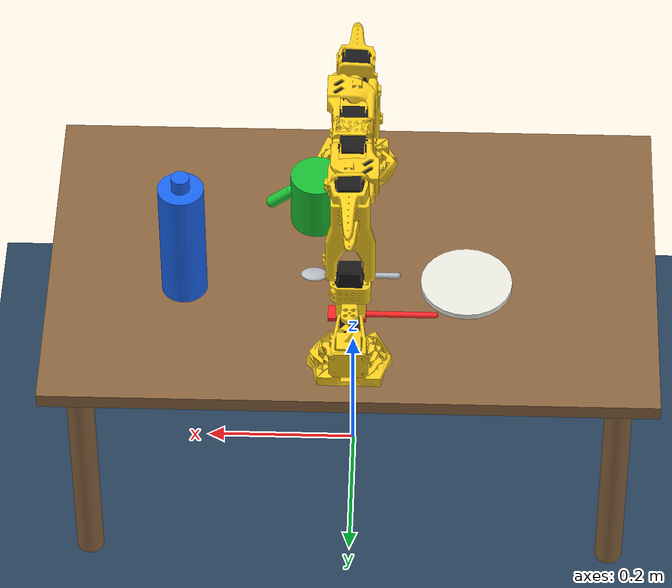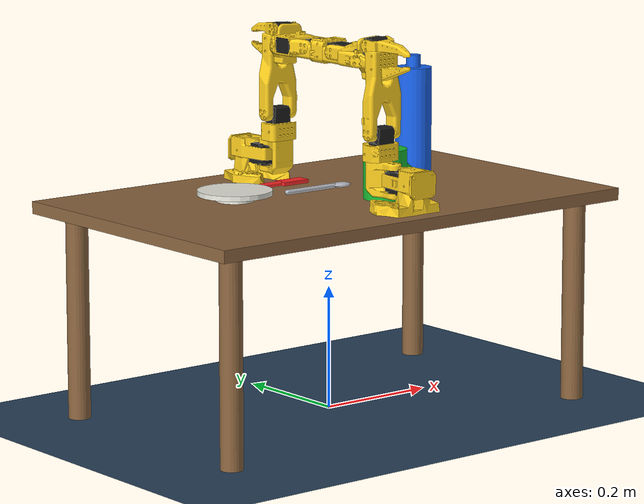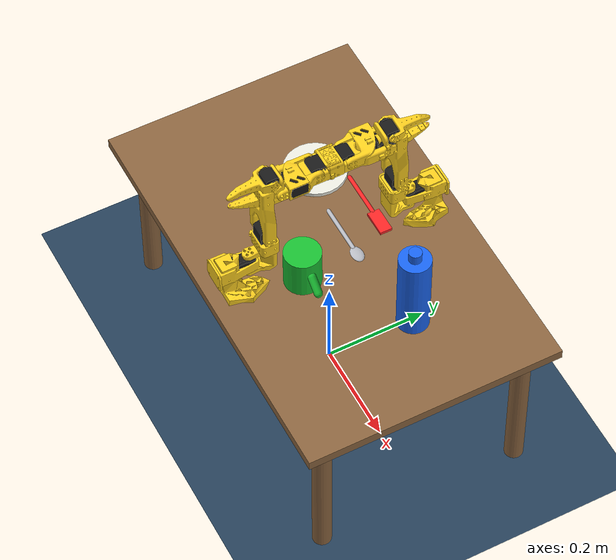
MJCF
<?xml version="1.0"?>
<mujoco model="so101_dual_table">
  <compiler angle="radian" meshdir="../../../../scenes/so101/assets" autolimits="true"/>

  <visual>
    <global offwidth="1280" offheight="720" azimuth="140" elevation="-25"/>
    <headlight diffuse="0.6 0.6 0.6" ambient="0.3 0.3 0.3" specular="0 0 0"/>
    <rgba haze="0.15 0.25 0.35 1"/>
  </visual>

  <default>
    <default class="so101_new_calib">
      <joint damping="1" frictionloss="0.1" armature="0.005"/>
      <position kp="50"/>
      <default class="visual">
        <geom type="mesh" contype="0" conaffinity="0" group="2"/>
      </default>
      <default class="collision">
        <geom group="3"/>
      </default>
    </default>
  </default>
  <default>
    <default class="sts3215">
      <geom contype="0" conaffinity="0"/>
      <joint damping="0.60" frictionloss="0.052" armature="0.028"/>
      <position kp="998.22" kv="2.731" forcerange="-2.94 2.94"/>
    </default>
    <default class="backlash">
      <joint damping="0.01" frictionloss="0" armature="0.01" limited="true" range="-0.008726646259971648 0.008726646259971648"/>
    </default>
  </default>

  <asset>
    <texture type="skybox" builtin="gradient" rgb1="0.3 0.5 0.7" rgb2="0 0 0" width="512" height="3072"/>
    <texture type="2d" name="groundplane" builtin="checker" mark="edge" rgb1="0.2 0.3 0.4" rgb2="0.1 0.2 0.3" markrgb="0.8 0.8 0.8" width="300" height="300"/>
    <material name="groundplane" texture="groundplane" texuniform="true" texrepeat="5 5" reflectance="0.2"/>

    <!-- Furniture / prop materials (ours, not upstream) -->
    <material name="table_material" rgba="0.55 0.40 0.25 1"/>
    <material name="drawer_material" rgba="0.42 0.28 0.18 1"/>
    <material name="drawer_box_material" rgba="0.85 0.10 0.10 1"/>
    <material name="plate_material" rgba="0.92 0.92 0.88 1"/>
    <material name="mug_material" rgba="0.10 0.75 0.20 1"/>
    <material name="mug_handle_material" rgba="0.10 0.75 0.20 1"/>
    <material name="fork_material" rgba="1.0 0.15 0.15 1.0"/>
    <material name="spoon_material" rgba="0.72 0.73 0.76 1"/>
    <material name="bottle_material" rgba="0.10 0.40 0.95 1"/>

    <mesh file="waveshare_mounting_plate_so101_v2.stl" />
    <mesh file="sts3215_03a_v1.stl" />
    <mesh file="motor_holder_so101_base_v1.stl" />
    <mesh file="wrist_roll_follower_so101_v1.stl" />
    <mesh file="moving_jaw_so101_v1.stl" />
    <mesh file="base_motor_holder_so101_v1.stl" />
    <mesh file="upper_arm_so101_v1.stl" />
    <mesh file="wrist_roll_pitch_so101_v2.stl" />
    <mesh file="under_arm_so101_v1.stl" />
    <mesh file="rotation_pitch_so101_v1.stl" />
    <mesh file="motor_holder_so101_wrist_v1.stl" />
    <mesh file="sts3215_03a_no_horn_v1.stl" />
    <mesh file="base_so101_v2.stl" />
    <material name="base_motor_holder_so101_v1_material" rgba="1 0.82 0.12 1" />
    <material name="base_so101_v2_material" rgba="1 0.82 0.12 1" />
    <material name="sts3215_03a_v1_material" rgba="0.1 0.1 0.1 1" />
    <material name="waveshare_mounting_plate_so101_v2_material" rgba="1 0.82 0.12 1" />
    <material name="motor_holder_so101_base_v1_material" rgba="1 0.82 0.12 1" />
    <material name="rotation_pitch_so101_v1_material" rgba="1 0.82 0.12 1" />
    <material name="upper_arm_so101_v1_material" rgba="1 0.82 0.12 1" />
    <material name="under_arm_so101_v1_material" rgba="1 0.82 0.12 1" />
    <material name="motor_holder_so101_wrist_v1_material" rgba="1 0.82 0.12 1" />
    <material name="sts3215_03a_no_horn_v1_material" rgba="0.1 0.1 0.1 1.0" />
    <material name="wrist_roll_pitch_so101_v2_material" rgba="1 0.82 0.12 1" />
    <material name="wrist_roll_follower_so101_v1_material" rgba="1 0.82 0.12 1" />
    <material name="moving_jaw_so101_v1_material" rgba="1 0.82 0.12 1" />
  </asset>

  <worldbody>
    <light pos="0 0 3.5" dir="0 0 -1" directional="true"/>
    <light pos="0.6 -0.6 1.5" dir="-0.4 0.4 -1" directional="true"/>
    <geom name="floor" size="0 0 0.05" pos="0 0 0" type="plane" material="groundplane"/>

    <body name="table" pos="0 0 0">
      <geom name="table_top" type="box" size="0.40 0.25 0.01" pos="0 0 0.34" material="table_material"/>
      <geom name="table_leg_fl" type="cylinder" size="0.018 0.165" pos="-0.35 -0.20 0.165" material="table_material"/>
      <geom name="table_leg_fr" type="cylinder" size="0.018 0.165" pos="0.35 -0.20 0.165" material="table_material"/>
      <geom name="table_leg_bl" type="cylinder" size="0.018 0.165" pos="-0.35 0.20 0.165" material="table_material"/>
      <geom name="table_leg_br" type="cylinder" size="0.018 0.165" pos="0.35 0.20 0.165" material="table_material"/>
    </body>

    <!-- Manipulable props (free joints). All placed within the arms'
         overlapping reach band, y in [-0.05, 0.08], resting on the table
         surface (z=0.35). -->
    <body name="plate" pos="-0.1500 0.0500 0.3550">
      <freejoint name="plate_free"/>
      <geom name="plate_foot" type="cylinder" size="0.0300 0.0050" pos="0 0 0" mass="0.05" material="plate_material" friction="0.9 0.005 0.0001"/>
      <geom name="plate_dish" type="cylinder" size="0.0600 0.0040" pos="0 0 0.0090" mass="0.10" material="plate_material" friction="0.9 0.005 0.0001"/>
    </body>

    <body name="mug" pos="0.0500 -0.0800 0.3900">
      <freejoint name="mug_free"/>
      <geom name="mug_body" type="cylinder" size="0.035 0.04" mass="0.22" material="mug_material" friction="0.9 0.005 0.0001"/>
      <geom name="mug_handle" type="capsule" size="0.008" fromto="0.035 0 0.01 0.06 0 -0.01" mass="0.02" material="mug_handle_material" friction="0.9 0.005 0.0001"/>
    </body>

    <body name="fork" pos="-0.0500 0.1000 0.3560">
      <freejoint name="fork_free"/>
      <geom name="fork_handle" type="capsule" size="0.004" fromto="-0.06 0 0 0.03 0 0" mass="0.02" material="fork_material" friction="0.5 0.003 0.0001"/>
      <geom name="fork_head" type="box" size="0.025 0.012 0.003" pos="0.055 0 0" mass="0.01" material="fork_material" friction="0.5 0.003 0.0001"/>
    </body>

    <body name="spoon" pos="0.0000 0.0300 0.3560">
      <freejoint name="spoon_free"/>
      <geom name="spoon_handle" type="capsule" size="0.004" fromto="-0.06 0 0 0.035 0 0" mass="0.018" material="spoon_material" friction="0.5 0.003 0.0001"/>
      <geom name="spoon_bowl" type="ellipsoid" size="0.018 0.012 0.004" pos="0.05 0 0" mass="0.012" material="spoon_material" friction="0.5 0.003 0.0001"/>
    </body>

    <body name="water_bottle" pos="0.2200 0.0500 0.4400">
      <freejoint name="water_bottle_free"/>
      <geom name="water_bottle_body" type="cylinder" size="0.03 0.09" mass="0.30" material="bottle_material" friction="0.7 0.004 0.0001"/>
      <geom name="water_bottle_cap" type="cylinder" size="0.012 0.01" pos="0 0 0.10" mass="0.01" material="bottle_material" friction="0.7 0.004 0.0001"/>
    </body>

    <body name="armA_base" pos="0 -0.2 0.35" quat="0.7071068 0 0 0.7071068" childclass="so101_new_calib">
      <inertial pos="0.0137179 -5.19711e-05 0.0334843" mass="0.147" fullinertia="0.000114686 0.000136117 0.000130364 -4.59787e-07 4.97151e-06 9.75275e-08" />
      <geom type="mesh" class="visual" pos="-0.00636471 -9.94414e-05 -0.0024" quat="0.5 0.5 0.5 0.5" mesh="base_motor_holder_so101_v1" material="base_motor_holder_so101_v1_material" />
      <geom type="mesh" class="visual" pos="-0.00636471 -8.97657e-09 -0.0024" quat="0.5 0.5 0.5 0.5" mesh="base_so101_v2" material="base_so101_v2_material" />
      <geom type="mesh" class="visual" pos="0.0263353 -8.97657e-09 0.0437" quat="1 -2.85511e-16 -9.64433e-17 6.12908e-16" mesh="sts3215_03a_v1" material="sts3215_03a_v1_material" />
      <geom type="mesh" class="visual" pos="-0.0309827 -0.000199441 0.0474" quat="0.5 0.5 0.5 0.5" mesh="waveshare_mounting_plate_so101_v2" material="waveshare_mounting_plate_so101_v2_material" />
      <site group="3" name="armA_baseframe" pos="8.67362e-19 9.55596e-18 3.46945e-18" quat="1 -8.17396e-19 3.78392e-17 2.22045e-16" />
      <body name="armA_shoulder" pos="0.0388353 -8.97657e-09 0.0624" quat="3.56167e-16 1.22818e-15 -1 -4.14635e-16">
        <joint axis="0 0 1" name="armA_shoulder_pan" type="hinge" range="-1.9198621771937616 1.9198621771937634" class="sts3215" />
        <inertial pos="-0.0307604 -1.66727e-05 -0.0252713" mass="0.100006" fullinertia="8.3759e-05 8.10403e-05 2.39783e-05 7.55525e-08 -1.16342e-06 1.54663e-07" />
        <geom type="mesh" class="visual" pos="-0.0303992 0.000422241 -0.0417" quat="0.5 0.5 0.5 -0.5" mesh="sts3215_03a_v1" material="sts3215_03a_v1_material" />
        <geom type="mesh" class="collision" pos="-0.0303992 0.000422241 -0.0417" quat="0.5 0.5 0.5 -0.5" mesh="sts3215_03a_v1" material="sts3215_03a_v1_material" />
        <geom type="mesh" class="visual" pos="-0.0675992 -0.000177759 0.0158499" quat="0.5 0.5 -0.5 0.5" mesh="motor_holder_so101_base_v1" material="motor_holder_so101_base_v1_material" />
        <geom type="mesh" class="collision" pos="-0.0675992 -0.000177759 0.0158499" quat="0.5 0.5 -0.5 0.5" mesh="motor_holder_so101_base_v1" material="motor_holder_so101_base_v1_material" />
        <geom type="mesh" class="visual" pos="0.0122008 2.22413e-05 0.0464" quat="0.707107 -0.707107 -0 8.3163e-34" mesh="rotation_pitch_so101_v1" material="rotation_pitch_so101_v1_material" />
        <geom type="mesh" class="collision" pos="0.0122008 2.22413e-05 0.0464" quat="0.707107 -0.707107 -0 8.3163e-34" mesh="rotation_pitch_so101_v1" material="rotation_pitch_so101_v1_material" />
        <body name="armA_upper_arm" pos="-0.0303992 -0.0182778 -0.0542" quat="0.5 -0.5 -0.5 -0.5">
          <joint axis="0 0 1" name="armA_shoulder_lift" type="hinge" range="-1.7453292519943224 1.7453292519943366" class="sts3215" />
          <inertial pos="-0.0898471 -0.00838224 0.0184089" mass="0.103" fullinertia="4.08002e-05 0.000147318 0.000142487 -1.97819e-05 -4.03016e-08 8.97326e-09" />
          <geom type="mesh" class="visual" pos="-0.11257 -0.0155 0.0187" quat="4.56308e-16 -0.707107 0.707107 -1.37383e-16" mesh="sts3215_03a_v1" material="sts3215_03a_v1_material" />
          <geom type="mesh" class="collision" pos="-0.11257 -0.0155 0.0187" quat="4.56308e-16 -0.707107 0.707107 -1.37383e-16" mesh="sts3215_03a_v1" material="sts3215_03a_v1_material" />
          <geom type="mesh" class="visual" pos="-0.065085 0.012 0.0182" quat="0 1 0 0" mesh="upper_arm_so101_v1" material="upper_arm_so101_v1_material" />
          <geom type="mesh" class="collision" pos="-0.065085 0.012 0.0182" quat="0 1 0 0" mesh="upper_arm_so101_v1" material="upper_arm_so101_v1_material" />
          <body name="armA_lower_arm" pos="-0.11257 -0.028 1.73763e-16" quat="0.707107 -5.98613e-17 -2.58051e-17 0.707107">
            <joint axis="0 0 1" name="armA_elbow_flex" type="hinge" range="-1.69 1.69" class="sts3215" />
            <inertial pos="-0.0980701 0.00324376 0.0182831" mass="0.104" fullinertia="2.87438e-05 0.000159844 0.00014529 7.41152e-06 1.26409e-06 -4.90188e-08" />
            <geom type="mesh" class="visual" pos="-0.0648499 -0.032 0.0182" quat="0 1 0 0" mesh="under_arm_so101_v1" material="under_arm_so101_v1_material" />
            <geom type="mesh" class="collision" pos="-0.0648499 -0.032 0.0182" quat="0 1 0 0" mesh="under_arm_so101_v1" material="under_arm_so101_v1_material" />
            <geom type="mesh" class="visual" pos="-0.0648499 -0.032 0.018" quat="3.92687e-16 -1 -1.9186e-15 -6.38378e-16" mesh="motor_holder_so101_wrist_v1" material="motor_holder_so101_wrist_v1_material" />
            <geom type="mesh" class="collision" pos="-0.0648499 -0.032 0.018" quat="3.92687e-16 -1 -1.9186e-15 -6.38378e-16" mesh="motor_holder_so101_wrist_v1" material="motor_holder_so101_wrist_v1_material" />
            <geom type="mesh" class="visual" pos="-0.1224 0.0052 0.0187" quat="7.21645e-16 1.56949e-15 1 -3.33067e-16" mesh="sts3215_03a_v1" material="sts3215_03a_v1_material" />
            <geom type="mesh" class="collision" pos="-0.1224 0.0052 0.0187" quat="7.21645e-16 1.56949e-15 1 -3.33067e-16" mesh="sts3215_03a_v1" material="sts3215_03a_v1_material" />
            <body name="armA_wrist" pos="-0.1349 0.0052 3.62355e-17" quat="0.707107 9.58722e-16 -7.51313e-16 -0.707107">
              <joint axis="0 0 1" name="armA_wrist_flex" type="hinge" range="-1.6580628494556928 1.6580627293335335" class="sts3215" />
              <inertial pos="-0.000103312 -0.0386143 0.0281156" mass="0.079" fullinertia="3.68263e-05 2.5391e-05 2.1e-05 1.7893e-08 -5.28128e-08 3.6412e-06" />
              <geom type="mesh" class="visual" pos="8.32667e-17 -0.0424 0.0306" quat="0.5 0.5 0.5 -0.5" mesh="sts3215_03a_no_horn_v1" material="sts3215_03a_no_horn_v1_material" />
              <geom type="mesh" class="collision" pos="8.32667e-17 -0.0424 0.0306" quat="0.5 0.5 0.5 -0.5" mesh="sts3215_03a_no_horn_v1" material="sts3215_03a_no_horn_v1_material" />
              <geom type="mesh" class="visual" pos="0 -0.028 0.0181" quat="0.5 -0.5 -0.5 -0.5" mesh="wrist_roll_pitch_so101_v2" material="wrist_roll_pitch_so101_v2_material" />
              <geom type="mesh" class="collision" pos="0 -0.028 0.0181" quat="0.5 -0.5 -0.5 -0.5" mesh="wrist_roll_pitch_so101_v2" material="wrist_roll_pitch_so101_v2_material" />
              <body name="armA_gripper" pos="5.55112e-17 -0.0611 0.0181" quat="0.0172091 -0.0172091 0.706897 0.706897">
                <joint axis="0 0 1" name="armA_wrist_roll" type="hinge" range="-2.7438472969992493 2.841206309382605" class="sts3215" />
                <inertial pos="0.000213627 0.000245138 -0.025187" mass="0.087" fullinertia="2.75087e-05 4.33657e-05 3.45059e-05 -3.35241e-07 -5.7352e-06 -5.17847e-08" />
                <geom type="mesh" class="visual" pos="0.0077 0.0001 -0.0234" quat="0.707107 -0.707107 1.66015e-15 6.45094e-15" mesh="sts3215_03a_v1" material="sts3215_03a_v1_material" />
                <geom type="mesh" class="collision" pos="0.0077 0.0001 -0.0234" quat="0.707107 -0.707107 1.66015e-15 6.45094e-15" mesh="sts3215_03a_v1" material="sts3215_03a_v1_material" contype="0" conaffinity="0" />
                <geom type="mesh" class="visual" pos="8.32667e-17 -0.000218214 0.000949706" quat="0 1 0 0" mesh="wrist_roll_follower_so101_v1" material="wrist_roll_follower_so101_v1_material" />
                <geom type="mesh" class="collision" pos="8.32667e-17 -0.000218214 0.000949706" quat="0 1 0 0" mesh="wrist_roll_follower_so101_v1" material="wrist_roll_follower_so101_v1_material" friction="1.5 0.1 0.001" contype="0" conaffinity="0" />
                <site group="3" name="armA_gripperframe" pos="-0.0079 -0.000218121 -0.0981274" quat="0.707107 -0 0.707107 -2.37788e-17" />
                <body name="armA_moving_jaw_so101_v1" pos="0.0202 0.0188 -0.0234" quat="0.707107 0.707107 -1.85362e-08 1.85362e-08">
                  <joint axis="0 0 1" name="armA_gripper" type="hinge" range="-0.17453297762778586 1.7453291995659765" class="sts3215" />
                  <inertial pos="-0.00157495 -0.0300244 0.0192755" mass="0.012" fullinertia="6.61427e-06 1.89032e-06 5.28738e-06 -3.19807e-07 -5.90717e-09 -1.09945e-07" />
                  <geom type="mesh" class="visual" pos="-5.55112e-17 -5.55112e-17 0.0189" quat="1 -0 3.00524e-16 -2.00834e-17" mesh="moving_jaw_so101_v1" material="moving_jaw_so101_v1_material" />
                  <geom type="mesh" class="collision" pos="-5.55112e-17 -5.55112e-17 0.0189" quat="1 -0 3.00524e-16 -2.00834e-17" mesh="moving_jaw_so101_v1" material="moving_jaw_so101_v1_material" friction="1.5 0.1 0.001" contype="0" conaffinity="0" />
                  <geom name="armA_moving_finger_pad" type="box" size="0.00125 0.00125 0.00125" pos="-0.01136 -0.076 0.019" friction="1 0.05 0.001" rgba="0.5 0.5 1 0.8" contype="1" conaffinity="1" />
                </body>
                <geom name="armA_static_finger_pad" type="box" size="0.00125 0.00125 0.00125" pos="-0.008875 0.0 -0.100" friction="1 0.05 0.001" rgba="1 0.5 0.5 0.8" contype="1" conaffinity="1" />
              </body>
              <camera name="armA_wrist" pos="0 -0.05 0.02" xyaxes="1 0 0 0 0 1" />
            </body>
          </body>
        </body>
      </body>
    </body>

    <!-- Arm B (armB_ prefix). Base mounted at the table's +y long edge,
         rotated -90 deg about z so the arm's local +x points toward -y,
         facing arm A. -->
    <body name="armB_base" pos="0 0.2 0.35" quat="0.7071068 0 0 -0.7071068" childclass="so101_new_calib">
      <inertial pos="0.0137179 -5.19711e-05 0.0334843" mass="0.147" fullinertia="0.000114686 0.000136117 0.000130364 -4.59787e-07 4.97151e-06 9.75275e-08" />
      <geom type="mesh" class="visual" pos="-0.00636471 -9.94414e-05 -0.0024" quat="0.5 0.5 0.5 0.5" mesh="base_motor_holder_so101_v1" material="base_motor_holder_so101_v1_material" />
      <geom type="mesh" class="visual" pos="-0.00636471 -8.97657e-09 -0.0024" quat="0.5 0.5 0.5 0.5" mesh="base_so101_v2" material="base_so101_v2_material" />
      <geom type="mesh" class="visual" pos="0.0263353 -8.97657e-09 0.0437" quat="1 -2.85511e-16 -9.64433e-17 6.12908e-16" mesh="sts3215_03a_v1" material="sts3215_03a_v1_material" />
      <geom type="mesh" class="visual" pos="-0.0309827 -0.000199441 0.0474" quat="0.5 0.5 0.5 0.5" mesh="waveshare_mounting_plate_so101_v2" material="waveshare_mounting_plate_so101_v2_material" />
      <site group="3" name="armB_baseframe" pos="8.67362e-19 9.55596e-18 3.46945e-18" quat="1 -8.17396e-19 3.78392e-17 2.22045e-16" />
      <body name="armB_shoulder" pos="0.0388353 -8.97657e-09 0.0624" quat="3.56167e-16 1.22818e-15 -1 -4.14635e-16">
        <joint axis="0 0 1" name="armB_shoulder_pan" type="hinge" range="-1.9198621771937616 1.9198621771937634" class="sts3215" />
        <inertial pos="-0.0307604 -1.66727e-05 -0.0252713" mass="0.100006" fullinertia="8.3759e-05 8.10403e-05 2.39783e-05 7.55525e-08 -1.16342e-06 1.54663e-07" />
        <geom type="mesh" class="visual" pos="-0.0303992 0.000422241 -0.0417" quat="0.5 0.5 0.5 -0.5" mesh="sts3215_03a_v1" material="sts3215_03a_v1_material" />
        <geom type="mesh" class="collision" pos="-0.0303992 0.000422241 -0.0417" quat="0.5 0.5 0.5 -0.5" mesh="sts3215_03a_v1" material="sts3215_03a_v1_material" />
        <geom type="mesh" class="visual" pos="-0.0675992 -0.000177759 0.0158499" quat="0.5 0.5 -0.5 0.5" mesh="motor_holder_so101_base_v1" material="motor_holder_so101_base_v1_material" />
        <geom type="mesh" class="collision" pos="-0.0675992 -0.000177759 0.0158499" quat="0.5 0.5 -0.5 0.5" mesh="motor_holder_so101_base_v1" material="motor_holder_so101_base_v1_material" />
        <geom type="mesh" class="visual" pos="0.0122008 2.22413e-05 0.0464" quat="0.707107 -0.707107 -0 8.3163e-34" mesh="rotation_pitch_so101_v1" material="rotation_pitch_so101_v1_material" />
        <geom type="mesh" class="collision" pos="0.0122008 2.22413e-05 0.0464" quat="0.707107 -0.707107 -0 8.3163e-34" mesh="rotation_pitch_so101_v1" material="rotation_pitch_so101_v1_material" />
        <body name="armB_upper_arm" pos="-0.0303992 -0.0182778 -0.0542" quat="0.5 -0.5 -0.5 -0.5">
          <joint axis="0 0 1" name="armB_shoulder_lift" type="hinge" range="-1.7453292519943224 1.7453292519943366" class="sts3215" />
          <inertial pos="-0.0898471 -0.00838224 0.0184089" mass="0.103" fullinertia="4.08002e-05 0.000147318 0.000142487 -1.97819e-05 -4.03016e-08 8.97326e-09" />
          <geom type="mesh" class="visual" pos="-0.11257 -0.0155 0.0187" quat="4.56308e-16 -0.707107 0.707107 -1.37383e-16" mesh="sts3215_03a_v1" material="sts3215_03a_v1_material" />
          <geom type="mesh" class="collision" pos="-0.11257 -0.0155 0.0187" quat="4.56308e-16 -0.707107 0.707107 -1.37383e-16" mesh="sts3215_03a_v1" material="sts3215_03a_v1_material" />
          <geom type="mesh" class="visual" pos="-0.065085 0.012 0.0182" quat="0 1 0 0" mesh="upper_arm_so101_v1" material="upper_arm_so101_v1_material" />
          <geom type="mesh" class="collision" pos="-0.065085 0.012 0.0182" quat="0 1 0 0" mesh="upper_arm_so101_v1" material="upper_arm_so101_v1_material" />
          <body name="armB_lower_arm" pos="-0.11257 -0.028 1.73763e-16" quat="0.707107 -5.98613e-17 -2.58051e-17 0.707107">
            <joint axis="0 0 1" name="armB_elbow_flex" type="hinge" range="-1.69 1.69" class="sts3215" />
            <inertial pos="-0.0980701 0.00324376 0.0182831" mass="0.104" fullinertia="2.87438e-05 0.000159844 0.00014529 7.41152e-06 1.26409e-06 -4.90188e-08" />
            <geom type="mesh" class="visual" pos="-0.0648499 -0.032 0.0182" quat="0 1 0 0" mesh="under_arm_so101_v1" material="under_arm_so101_v1_material" />
            <geom type="mesh" class="collision" pos="-0.0648499 -0.032 0.0182" quat="0 1 0 0" mesh="under_arm_so101_v1" material="under_arm_so101_v1_material" />
            <geom type="mesh" class="visual" pos="-0.0648499 -0.032 0.018" quat="3.92687e-16 -1 -1.9186e-15 -6.38378e-16" mesh="motor_holder_so101_wrist_v1" material="motor_holder_so101_wrist_v1_material" />
            <geom type="mesh" class="collision" pos="-0.0648499 -0.032 0.018" quat="3.92687e-16 -1 -1.9186e-15 -6.38378e-16" mesh="motor_holder_so101_wrist_v1" material="motor_holder_so101_wrist_v1_material" />
            <geom type="mesh" class="visual" pos="-0.1224 0.0052 0.0187" quat="7.21645e-16 1.56949e-15 1 -3.33067e-16" mesh="sts3215_03a_v1" material="sts3215_03a_v1_material" />
            <geom type="mesh" class="collision" pos="-0.1224 0.0052 0.0187" quat="7.21645e-16 1.56949e-15 1 -3.33067e-16" mesh="sts3215_03a_v1" material="sts3215_03a_v1_material" />
            <body name="armB_wrist" pos="-0.1349 0.0052 3.62355e-17" quat="0.707107 9.58722e-16 -7.51313e-16 -0.707107">
              <joint axis="0 0 1" name="armB_wrist_flex" type="hinge" range="-1.6580628494556928 1.6580627293335335" class="sts3215" />
              <inertial pos="-0.000103312 -0.0386143 0.0281156" mass="0.079" fullinertia="3.68263e-05 2.5391e-05 2.1e-05 1.7893e-08 -5.28128e-08 3.6412e-06" />
              <geom type="mesh" class="visual" pos="8.32667e-17 -0.0424 0.0306" quat="0.5 0.5 0.5 -0.5" mesh="sts3215_03a_no_horn_v1" material="sts3215_03a_no_horn_v1_material" />
              <geom type="mesh" class="collision" pos="8.32667e-17 -0.0424 0.0306" quat="0.5 0.5 0.5 -0.5" mesh="sts3215_03a_no_horn_v1" material="sts3215_03a_no_horn_v1_material" />
              <geom type="mesh" class="visual" pos="0 -0.028 0.0181" quat="0.5 -0.5 -0.5 -0.5" mesh="wrist_roll_pitch_so101_v2" material="wrist_roll_pitch_so101_v2_material" />
              <geom type="mesh" class="collision" pos="0 -0.028 0.0181" quat="0.5 -0.5 -0.5 -0.5" mesh="wrist_roll_pitch_so101_v2" material="wrist_roll_pitch_so101_v2_material" />
              <body name="armB_gripper" pos="5.55112e-17 -0.0611 0.0181" quat="0.0172091 -0.0172091 0.706897 0.706897">
                <joint axis="0 0 1" name="armB_wrist_roll" type="hinge" range="-2.7438472969992493 2.841206309382605" class="sts3215" />
                <inertial pos="0.000213627 0.000245138 -0.025187" mass="0.087" fullinertia="2.75087e-05 4.33657e-05 3.45059e-05 -3.35241e-07 -5.7352e-06 -5.17847e-08" />
                <geom type="mesh" class="visual" pos="0.0077 0.0001 -0.0234" quat="0.707107 -0.707107 1.66015e-15 6.45094e-15" mesh="sts3215_03a_v1" material="sts3215_03a_v1_material" />
                <geom type="mesh" class="collision" pos="0.0077 0.0001 -0.0234" quat="0.707107 -0.707107 1.66015e-15 6.45094e-15" mesh="sts3215_03a_v1" material="sts3215_03a_v1_material" contype="0" conaffinity="0" />
                <geom type="mesh" class="visual" pos="8.32667e-17 -0.000218214 0.000949706" quat="0 1 0 0" mesh="wrist_roll_follower_so101_v1" material="wrist_roll_follower_so101_v1_material" />
                <geom type="mesh" class="collision" pos="8.32667e-17 -0.000218214 0.000949706" quat="0 1 0 0" mesh="wrist_roll_follower_so101_v1" material="wrist_roll_follower_so101_v1_material" friction="1.5 0.1 0.001" contype="0" conaffinity="0" />
                <site group="3" name="armB_gripperframe" pos="-0.0079 -0.000218121 -0.0981274" quat="0.707107 -0 0.707107 -2.37788e-17" />
                <body name="armB_moving_jaw_so101_v1" pos="0.0202 0.0188 -0.0234" quat="0.707107 0.707107 -1.85362e-08 1.85362e-08">
                  <joint axis="0 0 1" name="armB_gripper" type="hinge" range="-0.17453297762778586 1.7453291995659765" class="sts3215" />
                  <inertial pos="-0.00157495 -0.0300244 0.0192755" mass="0.012" fullinertia="6.61427e-06 1.89032e-06 5.28738e-06 -3.19807e-07 -5.90717e-09 -1.09945e-07" />
                  <geom type="mesh" class="visual" pos="-5.55112e-17 -5.55112e-17 0.0189" quat="1 -0 3.00524e-16 -2.00834e-17" mesh="moving_jaw_so101_v1" material="moving_jaw_so101_v1_material" />
                  <geom type="mesh" class="collision" pos="-5.55112e-17 -5.55112e-17 0.0189" quat="1 -0 3.00524e-16 -2.00834e-17" mesh="moving_jaw_so101_v1" material="moving_jaw_so101_v1_material" friction="1.5 0.1 0.001" contype="0" conaffinity="0" />
                  <geom name="armB_moving_finger_pad" type="box" size="0.00125 0.00125 0.00125" pos="-0.01136 -0.076 0.019" friction="1 0.05 0.001" rgba="0.5 0.5 1 0.8" contype="1" conaffinity="1" />
                </body>
                <geom name="armB_static_finger_pad" type="box" size="0.00125 0.00125 0.00125" pos="-0.008875 0.0 -0.100" friction="1 0.05 0.001" rgba="1 0.5 0.5 0.8" contype="1" conaffinity="1" />
              </body>
              <camera name="armB_wrist" pos="0 -0.05 0.02" xyaxes="1 0 0 0 0 1" />
            </body>
          </body>
        </body>
      </body>
    </body>

    <camera name="overhead" pos="0 0 1.3" mode="targetbody" target="table"/>
    <camera name="front" pos="1.5500 0.0000 0.8500" xyaxes="0.0000 1.0000 -0.0000 -0.2203 0.0000 0.9754" fovy="55"/>
    <camera name="posenet_cam" pos="0.6000 0.0000 1.1000" xyaxes="0 1 0 -0.7 0 0.7" fovy="45"/>
    <!-- ADR-059: `drawer_view` REMOVED along with the drawer (see the
         worldbody comment above the props block). -->
  </worldbody>

  <actuator>
    <position class="sts3215" name="armA_shoulder_pan" joint="armA_shoulder_pan" forcerange="-3.35 3.35" ctrlrange="-1.91986 1.91986" />
    <position class="sts3215" name="armA_shoulder_lift" joint="armA_shoulder_lift" forcerange="-3.35 3.35" ctrlrange="-1.74533 1.74533" />
    <position class="sts3215" name="armA_elbow_flex" joint="armA_elbow_flex" forcerange="-3.35 3.35" ctrlrange="-1.69 1.69" />
    <position class="sts3215" name="armA_wrist_flex" joint="armA_wrist_flex" forcerange="-3.35 3.35" ctrlrange="-1.65806 1.65806" />
    <position class="sts3215" name="armA_wrist_roll" joint="armA_wrist_roll" forcerange="-3.35 3.35" ctrlrange="-2.74385 2.84121" />
    <position class="sts3215" name="armA_gripper" joint="armA_gripper" forcerange="-3.35 3.35" ctrlrange="-0.17453 1.74533" />
    <position class="sts3215" name="armB_shoulder_pan" joint="armB_shoulder_pan" forcerange="-3.35 3.35" ctrlrange="-1.91986 1.91986" />
    <position class="sts3215" name="armB_shoulder_lift" joint="armB_shoulder_lift" forcerange="-3.35 3.35" ctrlrange="-1.74533 1.74533" />
    <position class="sts3215" name="armB_elbow_flex" joint="armB_elbow_flex" forcerange="-3.35 3.35" ctrlrange="-1.69 1.69" />
    <position class="sts3215" name="armB_wrist_flex" joint="armB_wrist_flex" forcerange="-3.35 3.35" ctrlrange="-1.65806 1.65806" />
    <position class="sts3215" name="armB_wrist_roll" joint="armB_wrist_roll" forcerange="-3.35 3.35" ctrlrange="-2.74385 2.84121" />
    <position class="sts3215" name="armB_gripper" joint="armB_gripper" forcerange="-3.35 3.35" ctrlrange="-0.17453 1.74533" />
  </actuator>

  <keyframe>
    <key name="home" qpos="-0.150000 0.050000 0.355000 1.000000 0.000000 0.000000 0.000000 0.050000 -0.080000 0.390000 1.000000 0.000000 0.000000 0.000000 -0.050000 0.100000 0.356000 1.000000 0.000000 0.000000 0.000000 0.000000 0.030000 0.356000 1.000000 0.000000 0.000000 0.000000 0.220000 0.050000 0.440000 1.000000 0.000000 0.000000 0.000000 0.157530 -0.993039 -0.904159 0.057312 -0.246659 1.745329 0.157530 -0.993039 -0.904159 0.057312 -0.246659 1.745329"/>
  </keyframe>

  <equality>
    <weld name="weld_armA_plate" body1="plate" body2="armA_gripper" active="false" solref="0.005 1"/>
    <weld name="weld_armA_mug" body1="mug" body2="armA_gripper" active="false" solref="0.005 1"/>
    <weld name="weld_armA_fork" body1="fork" body2="armA_gripper" active="false" solref="0.005 1"/>
    <weld name="weld_armA_spoon" body1="spoon" body2="armA_gripper" active="false" solref="0.005 1"/>
    <weld name="weld_armA_water_bottle" body1="water_bottle" body2="armA_gripper" active="false" solref="0.005 1"/>
    <weld name="weld_armB_plate" body1="plate" body2="armB_gripper" active="false" solref="0.005 1"/>
    <weld name="weld_armB_mug" body1="mug" body2="armB_gripper" active="false" solref="0.005 1"/>
    <weld name="weld_armB_fork" body1="fork" body2="armB_gripper" active="false" solref="0.005 1"/>
    <weld name="weld_armB_spoon" body1="spoon" body2="armB_gripper" active="false" solref="0.005 1"/>
    <weld name="weld_armB_water_bottle" body1="water_bottle" body2="armB_gripper" active="false" solref="0.005 1"/>
  </equality>
</mujoco>
